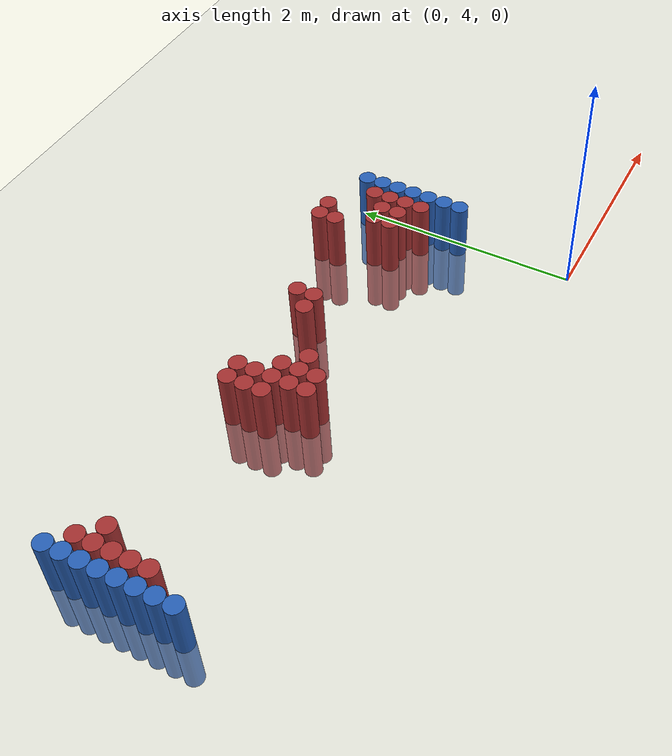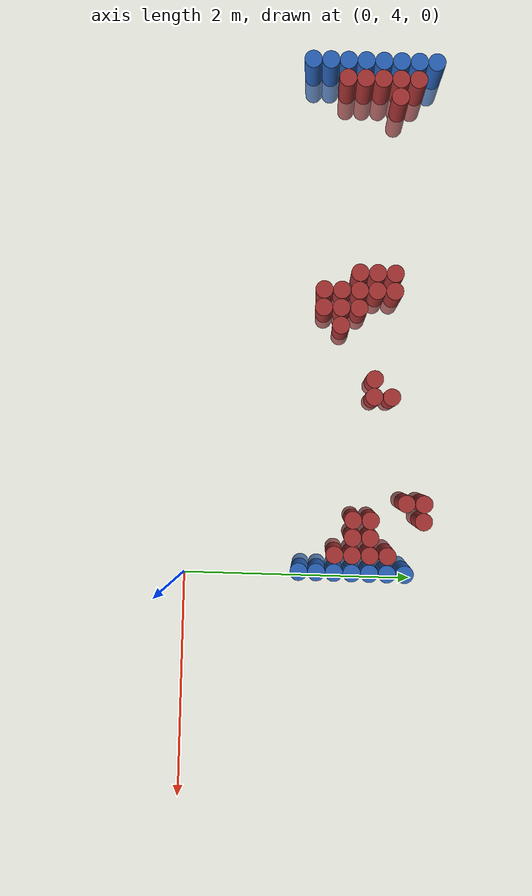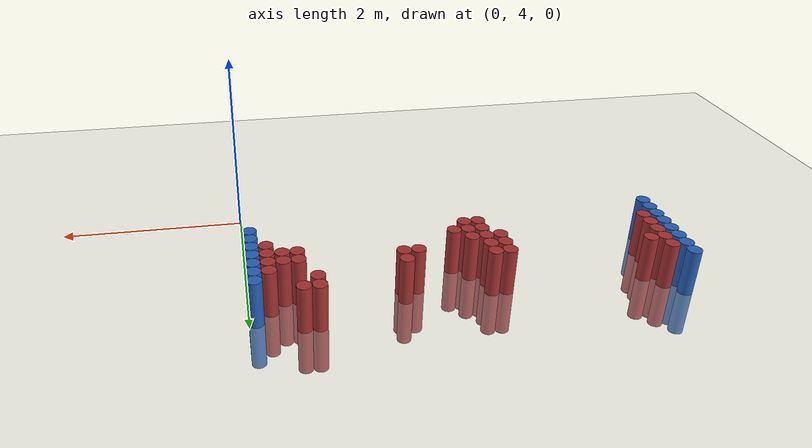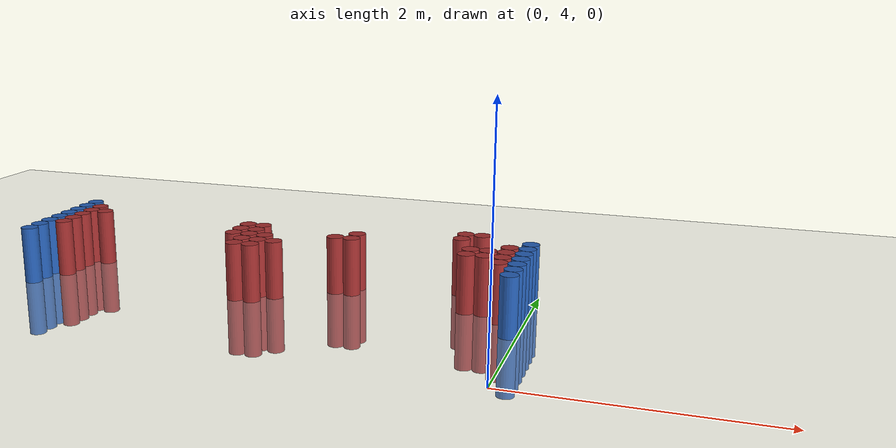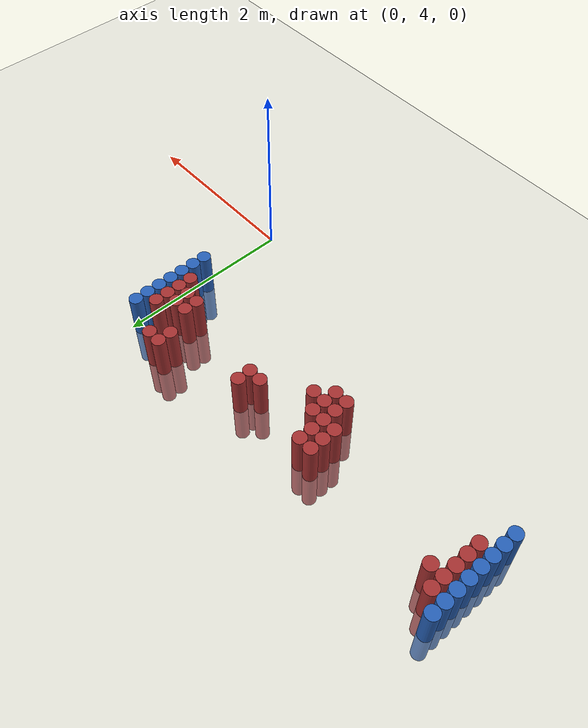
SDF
<sdf version="1.6">
 <world name="default">
  <model name="ground_plane">
   <static>1</static>
   <link name="link">
    <collision name="collision">
     <geometry><plane><normal>0 0 1</normal><size>100 100</size></plane></geometry>
     <surface><friction><ode><mu>100</mu><mu2>50</mu2></ode></friction></surface>
    </collision>
    <visual name="visual">
     <cast_shadows>0</cast_shadows>
     <geometry><plane><normal>0 0 1</normal><size>100 100</size></plane></geometry>
     <material>
      <script><uri>file://media/materials/scripts/gazebo.material</uri><name>Gazebo/Grey</name></script>
     </material>
    </visual>
   </link>
  </model>
  <model name="unit_cylinder_94">
   <static>1</static>
   <pose>-0.075000 5.025000 0.000000 0.000000 0.000000 0.000000</pose>
   <link name="link">
    <inertial>
     <mass>1</mass>
     <inertia><ixx>0.145833</ixx><ixy>0</ixy><ixz>0</ixz><iyy>0.145833</iyy><iyz>0</iyz><izz>0.125</izz></inertia>
    </inertial>
    <collision name="collision">
     <geometry><cylinder><radius>0.075000</radius><length>1</length></cylinder></geometry>
    </collision>
    <visual name="visual">
     <geometry><cylinder><radius>0.075000</radius><length>1</length></cylinder></geometry>
     <material>
      <ambient>0.152000 0.379000 0.720000 1</ambient>
      <diffuse>0.152000 0.379000 0.720000 1</diffuse>
     </material>
     <material>
      <script><name>Gazebo/Grey</name><uri>file://media/materials/scripts/gazebo.material</uri></script>
     </material>
    </visual>
   </link>
  </model>
  <model name="unit_cylinder_95">
   <static>1</static>
   <pose>-4.425000 5.025000 0.000000 0.000000 0.000000 0.000000</pose>
   <link name="link">
    <inertial>
     <mass>1</mass>
     <inertia><ixx>0.145833</ixx><ixy>0</ixy><ixz>0</ixz><iyy>0.145833</iyy><iyz>0</iyz><izz>0.125</izz></inertia>
    </inertial>
    <collision name="collision">
     <geometry><cylinder><radius>0.075000</radius><length>1</length></cylinder></geometry>
    </collision>
    <visual name="visual">
     <geometry><cylinder><radius>0.075000</radius><length>1</length></cylinder></geometry>
     <material>
      <ambient>0.152000 0.379000 0.720000 1</ambient>
      <diffuse>0.152000 0.379000 0.720000 1</diffuse>
     </material>
     <material>
      <script><name>Gazebo/Grey</name><uri>file://media/materials/scripts/gazebo.material</uri></script>
     </material>
    </visual>
   </link>
  </model>
  <model name="unit_cylinder_96">
   <static>1</static>
   <pose>-4.425000 5.175000 0.000000 0.000000 0.000000 0.000000</pose>
   <link name="link">
    <inertial>
     <mass>1</mass>
     <inertia><ixx>0.145833</ixx><ixy>0</ixy><ixz>0</ixz><iyy>0.145833</iyy><iyz>0</iyz><izz>0.125</izz></inertia>
    </inertial>
    <collision name="collision">
     <geometry><cylinder><radius>0.075000</radius><length>1</length></cylinder></geometry>
    </collision>
    <visual name="visual">
     <geometry><cylinder><radius>0.075000</radius><length>1</length></cylinder></geometry>
     <material>
      <ambient>0.152000 0.379000 0.720000 1</ambient>
      <diffuse>0.152000 0.379000 0.720000 1</diffuse>
     </material>
     <material>
      <script><name>Gazebo/Grey</name><uri>file://media/materials/scripts/gazebo.material</uri></script>
     </material>
    </visual>
   </link>
  </model>
  <model name="unit_cylinder_97">
   <static>1</static>
   <pose>-4.425000 5.325000 0.000000 0.000000 0.000000 0.000000</pose>
   <link name="link">
    <inertial>
     <mass>1</mass>
     <inertia><ixx>0.145833</ixx><ixy>0</ixy><ixz>0</ixz><iyy>0.145833</iyy><iyz>0</iyz><izz>0.125</izz></inertia>
    </inertial>
    <collision name="collision">
     <geometry><cylinder><radius>0.075000</radius><length>1</length></cylinder></geometry>
    </collision>
    <visual name="visual">
     <geometry><cylinder><radius>0.075000</radius><length>1</length></cylinder></geometry>
     <material>
      <ambient>0.152000 0.379000 0.720000 1</ambient>
      <diffuse>0.152000 0.379000 0.720000 1</diffuse>
     </material>
     <material>
      <script><name>Gazebo/Grey</name><uri>file://media/materials/scripts/gazebo.material</uri></script>
     </material>
    </visual>
   </link>
  </model>
  <model name="unit_cylinder_98">
   <static>1</static>
   <pose>-4.425000 5.475000 0.000000 0.000000 0.000000 0.000000</pose>
   <link name="link">
    <inertial>
     <mass>1</mass>
     <inertia><ixx>0.145833</ixx><ixy>0</ixy><ixz>0</ixz><iyy>0.145833</iyy><iyz>0</iyz><izz>0.125</izz></inertia>
    </inertial>
    <collision name="collision">
     <geometry><cylinder><radius>0.075000</radius><length>1</length></cylinder></geometry>
    </collision>
    <visual name="visual">
     <geometry><cylinder><radius>0.075000</radius><length>1</length></cylinder></geometry>
     <material>
      <ambient>0.152000 0.379000 0.720000 1</ambient>
      <diffuse>0.152000 0.379000 0.720000 1</diffuse>
     </material>
     <material>
      <script><name>Gazebo/Grey</name><uri>file://media/materials/scripts/gazebo.material</uri></script>
     </material>
    </visual>
   </link>
  </model>
  <model name="unit_cylinder_99">
   <static>1</static>
   <pose>-4.425000 5.625000 0.000000 0.000000 0.000000 0.000000</pose>
   <link name="link">
    <inertial>
     <mass>1</mass>
     <inertia><ixx>0.145833</ixx><ixy>0</ixy><ixz>0</ixz><iyy>0.145833</iyy><iyz>0</iyz><izz>0.125</izz></inertia>
    </inertial>
    <collision name="collision">
     <geometry><cylinder><radius>0.075000</radius><length>1</length></cylinder></geometry>
    </collision>
    <visual name="visual">
     <geometry><cylinder><radius>0.075000</radius><length>1</length></cylinder></geometry>
     <material>
      <ambient>0.152000 0.379000 0.720000 1</ambient>
      <diffuse>0.152000 0.379000 0.720000 1</diffuse>
     </material>
     <material>
      <script><name>Gazebo/Grey</name><uri>file://media/materials/scripts/gazebo.material</uri></script>
     </material>
    </visual>
   </link>
  </model>
  <model name="unit_cylinder_100">
   <static>1</static>
   <pose>-4.425000 5.775000 0.000000 0.000000 0.000000 0.000000</pose>
   <link name="link">
    <inertial>
     <mass>1</mass>
     <inertia><ixx>0.145833</ixx><ixy>0</ixy><ixz>0</ixz><iyy>0.145833</iyy><iyz>0</iyz><izz>0.125</izz></inertia>
    </inertial>
    <collision name="collision">
     <geometry><cylinder><radius>0.075000</radius><length>1</length></cylinder></geometry>
    </collision>
    <visual name="visual">
     <geometry><cylinder><radius>0.075000</radius><length>1</length></cylinder></geometry>
     <material>
      <ambient>0.152000 0.379000 0.720000 1</ambient>
      <diffuse>0.152000 0.379000 0.720000 1</diffuse>
     </material>
     <material>
      <script><name>Gazebo/Grey</name><uri>file://media/materials/scripts/gazebo.material</uri></script>
     </material>
    </visual>
   </link>
  </model>
  <model name="unit_cylinder_101">
   <static>1</static>
   <pose>-4.425000 5.925000 0.000000 0.000000 0.000000 0.000000</pose>
   <link name="link">
    <inertial>
     <mass>1</mass>
     <inertia><ixx>0.145833</ixx><ixy>0</ixy><ixz>0</ixz><iyy>0.145833</iyy><iyz>0</iyz><izz>0.125</izz></inertia>
    </inertial>
    <collision name="collision">
     <geometry><cylinder><radius>0.075000</radius><length>1</length></cylinder></geometry>
    </collision>
    <visual name="visual">
     <geometry><cylinder><radius>0.075000</radius><length>1</length></cylinder></geometry>
     <material>
      <ambient>0.152000 0.379000 0.720000 1</ambient>
      <diffuse>0.152000 0.379000 0.720000 1</diffuse>
     </material>
     <material>
      <script><name>Gazebo/Grey</name><uri>file://media/materials/scripts/gazebo.material</uri></script>
     </material>
    </visual>
   </link>
  </model>
  <model name="unit_cylinder_102">
   <static>1</static>
   <pose>-4.425000 6.075000 0.000000 0.000000 0.000000 0.000000</pose>
   <link name="link">
    <inertial>
     <mass>1</mass>
     <inertia><ixx>0.145833</ixx><ixy>0</ixy><ixz>0</ixz><iyy>0.145833</iyy><iyz>0</iyz><izz>0.125</izz></inertia>
    </inertial>
    <collision name="collision">
     <geometry><cylinder><radius>0.075000</radius><length>1</length></cylinder></geometry>
    </collision>
    <visual name="visual">
     <geometry><cylinder><radius>0.075000</radius><length>1</length></cylinder></geometry>
     <material>
      <ambient>0.152000 0.379000 0.720000 1</ambient>
      <diffuse>0.152000 0.379000 0.720000 1</diffuse>
     </material>
     <material>
      <script><name>Gazebo/Grey</name><uri>file://media/materials/scripts/gazebo.material</uri></script>
     </material>
    </visual>
   </link>
  </model>
  <model name="unit_cylinder_126">
   <static>1</static>
   <pose>-4.275000 5.325000 0.000000 0.000000 0.000000 0.000000</pose>
   <link name="link">
    <inertial>
     <mass>1</mass>
     <inertia><ixx>0.145833</ixx><ixy>0</ixy><ixz>0</ixz><iyy>0.145833</iyy><iyz>0</iyz><izz>0.125</izz></inertia>
    </inertial>
    <collision name="collision">
     <geometry><cylinder><radius>0.075000</radius><length>1</length></cylinder></geometry>
    </collision>
    <visual name="visual">
     <geometry><cylinder><radius>0.075000</radius><length>1</length></cylinder></geometry>
     <material>
      <ambient>0.648000 0.192000 0.192000 1</ambient>
      <diffuse>0.648000 0.192000 0.192000 1</diffuse>
     </material>
     <material>
      <script><name>Gazebo/Grey</name><uri>file://media/materials/scripts/gazebo.material</uri></script>
     </material>
    </visual>
   </link>
  </model>
  <model name="unit_cylinder_127">
   <static>1</static>
   <pose>-4.275000 5.475000 0.000000 0.000000 0.000000 0.000000</pose>
   <link name="link">
    <inertial>
     <mass>1</mass>
     <inertia><ixx>0.145833</ixx><ixy>0</ixy><ixz>0</ixz><iyy>0.145833</iyy><iyz>0</iyz><izz>0.125</izz></inertia>
    </inertial>
    <collision name="collision">
     <geometry><cylinder><radius>0.075000</radius><length>1</length></cylinder></geometry>
    </collision>
    <visual name="visual">
     <geometry><cylinder><radius>0.075000</radius><length>1</length></cylinder></geometry>
     <material>
      <ambient>0.648000 0.192000 0.192000 1</ambient>
      <diffuse>0.648000 0.192000 0.192000 1</diffuse>
     </material>
     <material>
      <script><name>Gazebo/Grey</name><uri>file://media/materials/scripts/gazebo.material</uri></script>
     </material>
    </visual>
   </link>
  </model>
  <model name="unit_cylinder_128">
   <static>1</static>
   <pose>-4.275000 5.625000 0.000000 0.000000 0.000000 0.000000</pose>
   <link name="link">
    <inertial>
     <mass>1</mass>
     <inertia><ixx>0.145833</ixx><ixy>0</ixy><ixz>0</ixz><iyy>0.145833</iyy><iyz>0</iyz><izz>0.125</izz></inertia>
    </inertial>
    <collision name="collision">
     <geometry><cylinder><radius>0.075000</radius><length>1</length></cylinder></geometry>
    </collision>
    <visual name="visual">
     <geometry><cylinder><radius>0.075000</radius><length>1</length></cylinder></geometry>
     <material>
      <ambient>0.648000 0.192000 0.192000 1</ambient>
      <diffuse>0.648000 0.192000 0.192000 1</diffuse>
     </material>
     <material>
      <script><name>Gazebo/Grey</name><uri>file://media/materials/scripts/gazebo.material</uri></script>
     </material>
    </visual>
   </link>
  </model>
  <model name="unit_cylinder_129">
   <static>1</static>
   <pose>-4.275000 5.775000 0.000000 0.000000 0.000000 0.000000</pose>
   <link name="link">
    <inertial>
     <mass>1</mass>
     <inertia><ixx>0.145833</ixx><ixy>0</ixy><ixz>0</ixz><iyy>0.145833</iyy><iyz>0</iyz><izz>0.125</izz></inertia>
    </inertial>
    <collision name="collision">
     <geometry><cylinder><radius>0.075000</radius><length>1</length></cylinder></geometry>
    </collision>
    <visual name="visual">
     <geometry><cylinder><radius>0.075000</radius><length>1</length></cylinder></geometry>
     <material>
      <ambient>0.648000 0.192000 0.192000 1</ambient>
      <diffuse>0.648000 0.192000 0.192000 1</diffuse>
     </material>
     <material>
      <script><name>Gazebo/Grey</name><uri>file://media/materials/scripts/gazebo.material</uri></script>
     </material>
    </visual>
   </link>
  </model>
  <model name="unit_cylinder_130">
   <static>1</static>
   <pose>-4.275000 5.925000 0.000000 0.000000 0.000000 0.000000</pose>
   <link name="link">
    <inertial>
     <mass>1</mass>
     <inertia><ixx>0.145833</ixx><ixy>0</ixy><ixz>0</ixz><iyy>0.145833</iyy><iyz>0</iyz><izz>0.125</izz></inertia>
    </inertial>
    <collision name="collision">
     <geometry><cylinder><radius>0.075000</radius><length>1</length></cylinder></geometry>
    </collision>
    <visual name="visual">
     <geometry><cylinder><radius>0.075000</radius><length>1</length></cylinder></geometry>
     <material>
      <ambient>0.648000 0.192000 0.192000 1</ambient>
      <diffuse>0.648000 0.192000 0.192000 1</diffuse>
     </material>
     <material>
      <script><name>Gazebo/Grey</name><uri>file://media/materials/scripts/gazebo.material</uri></script>
     </material>
    </visual>
   </link>
  </model>
  <model name="unit_cylinder_135">
   <static>1</static>
   <pose>-4.125000 5.775000 0.000000 0.000000 0.000000 0.000000</pose>
   <link name="link">
    <inertial>
     <mass>1</mass>
     <inertia><ixx>0.145833</ixx><ixy>0</ixy><ixz>0</ixz><iyy>0.145833</iyy><iyz>0</iyz><izz>0.125</izz></inertia>
    </inertial>
    <collision name="collision">
     <geometry><cylinder><radius>0.075000</radius><length>1</length></cylinder></geometry>
    </collision>
    <visual name="visual">
     <geometry><cylinder><radius>0.075000</radius><length>1</length></cylinder></geometry>
     <material>
      <ambient>0.648000 0.192000 0.192000 1</ambient>
      <diffuse>0.648000 0.192000 0.192000 1</diffuse>
     </material>
     <material>
      <script><name>Gazebo/Grey</name><uri>file://media/materials/scripts/gazebo.material</uri></script>
     </material>
    </visual>
   </link>
  </model>
  <model name="unit_cylinder_162">
   <static>1</static>
   <pose>-2.625000 5.475000 0.000000 0.000000 0.000000 0.000000</pose>
   <link name="link">
    <inertial>
     <mass>1</mass>
     <inertia><ixx>0.145833</ixx><ixy>0</ixy><ixz>0</ixz><iyy>0.145833</iyy><iyz>0</iyz><izz>0.125</izz></inertia>
    </inertial>
    <collision name="collision">
     <geometry><cylinder><radius>0.075000</radius><length>1</length></cylinder></geometry>
    </collision>
    <visual name="visual">
     <geometry><cylinder><radius>0.075000</radius><length>1</length></cylinder></geometry>
     <material>
      <ambient>0.648000 0.192000 0.192000 1</ambient>
      <diffuse>0.648000 0.192000 0.192000 1</diffuse>
     </material>
     <material>
      <script><name>Gazebo/Grey</name><uri>file://media/materials/scripts/gazebo.material</uri></script>
     </material>
    </visual>
   </link>
  </model>
  <model name="unit_cylinder_163">
   <static>1</static>
   <pose>-2.625000 5.625000 0.000000 0.000000 0.000000 0.000000</pose>
   <link name="link">
    <inertial>
     <mass>1</mass>
     <inertia><ixx>0.145833</ixx><ixy>0</ixy><ixz>0</ixz><iyy>0.145833</iyy><iyz>0</iyz><izz>0.125</izz></inertia>
    </inertial>
    <collision name="collision">
     <geometry><cylinder><radius>0.075000</radius><length>1</length></cylinder></geometry>
    </collision>
    <visual name="visual">
     <geometry><cylinder><radius>0.075000</radius><length>1</length></cylinder></geometry>
     <material>
      <ambient>0.648000 0.192000 0.192000 1</ambient>
      <diffuse>0.648000 0.192000 0.192000 1</diffuse>
     </material>
     <material>
      <script><name>Gazebo/Grey</name><uri>file://media/materials/scripts/gazebo.material</uri></script>
     </material>
    </visual>
   </link>
  </model>
  <model name="unit_cylinder_164">
   <static>1</static>
   <pose>-2.625000 5.775000 0.000000 0.000000 0.000000 0.000000</pose>
   <link name="link">
    <inertial>
     <mass>1</mass>
     <inertia><ixx>0.145833</ixx><ixy>0</ixy><ixz>0</ixz><iyy>0.145833</iyy><iyz>0</iyz><izz>0.125</izz></inertia>
    </inertial>
    <collision name="collision">
     <geometry><cylinder><radius>0.075000</radius><length>1</length></cylinder></geometry>
    </collision>
    <visual name="visual">
     <geometry><cylinder><radius>0.075000</radius><length>1</length></cylinder></geometry>
     <material>
      <ambient>0.648000 0.192000 0.192000 1</ambient>
      <diffuse>0.648000 0.192000 0.192000 1</diffuse>
     </material>
     <material>
      <script><name>Gazebo/Grey</name><uri>file://media/materials/scripts/gazebo.material</uri></script>
     </material>
    </visual>
   </link>
  </model>
  <model name="unit_cylinder_165">
   <static>1</static>
   <pose>-2.475000 5.175000 0.000000 0.000000 0.000000 0.000000</pose>
   <link name="link">
    <inertial>
     <mass>1</mass>
     <inertia><ixx>0.145833</ixx><ixy>0</ixy><ixz>0</ixz><iyy>0.145833</iyy><iyz>0</iyz><izz>0.125</izz></inertia>
    </inertial>
    <collision name="collision">
     <geometry><cylinder><radius>0.075000</radius><length>1</length></cylinder></geometry>
    </collision>
    <visual name="visual">
     <geometry><cylinder><radius>0.075000</radius><length>1</length></cylinder></geometry>
     <material>
      <ambient>0.648000 0.192000 0.192000 1</ambient>
      <diffuse>0.648000 0.192000 0.192000 1</diffuse>
     </material>
     <material>
      <script><name>Gazebo/Grey</name><uri>file://media/materials/scripts/gazebo.material</uri></script>
     </material>
    </visual>
   </link>
  </model>
  <model name="unit_cylinder_166">
   <static>1</static>
   <pose>-2.475000 5.325000 0.000000 0.000000 0.000000 0.000000</pose>
   <link name="link">
    <inertial>
     <mass>1</mass>
     <inertia><ixx>0.145833</ixx><ixy>0</ixy><ixz>0</ixz><iyy>0.145833</iyy><iyz>0</iyz><izz>0.125</izz></inertia>
    </inertial>
    <collision name="collision">
     <geometry><cylinder><radius>0.075000</radius><length>1</length></cylinder></geometry>
    </collision>
    <visual name="visual">
     <geometry><cylinder><radius>0.075000</radius><length>1</length></cylinder></geometry>
     <material>
      <ambient>0.648000 0.192000 0.192000 1</ambient>
      <diffuse>0.648000 0.192000 0.192000 1</diffuse>
     </material>
     <material>
      <script><name>Gazebo/Grey</name><uri>file://media/materials/scripts/gazebo.material</uri></script>
     </material>
    </visual>
   </link>
  </model>
  <model name="unit_cylinder_167">
   <static>1</static>
   <pose>-2.475000 5.475000 0.000000 0.000000 0.000000 0.000000</pose>
   <link name="link">
    <inertial>
     <mass>1</mass>
     <inertia><ixx>0.145833</ixx><ixy>0</ixy><ixz>0</ixz><iyy>0.145833</iyy><iyz>0</iyz><izz>0.125</izz></inertia>
    </inertial>
    <collision name="collision">
     <geometry><cylinder><radius>0.075000</radius><length>1</length></cylinder></geometry>
    </collision>
    <visual name="visual">
     <geometry><cylinder><radius>0.075000</radius><length>1</length></cylinder></geometry>
     <material>
      <ambient>0.648000 0.192000 0.192000 1</ambient>
      <diffuse>0.648000 0.192000 0.192000 1</diffuse>
     </material>
     <material>
      <script><name>Gazebo/Grey</name><uri>file://media/materials/scripts/gazebo.material</uri></script>
     </material>
    </visual>
   </link>
  </model>
  <model name="unit_cylinder_168">
   <static>1</static>
   <pose>-2.475000 5.625000 0.000000 0.000000 0.000000 0.000000</pose>
   <link name="link">
    <inertial>
     <mass>1</mass>
     <inertia><ixx>0.145833</ixx><ixy>0</ixy><ixz>0</ixz><iyy>0.145833</iyy><iyz>0</iyz><izz>0.125</izz></inertia>
    </inertial>
    <collision name="collision">
     <geometry><cylinder><radius>0.075000</radius><length>1</length></cylinder></geometry>
    </collision>
    <visual name="visual">
     <geometry><cylinder><radius>0.075000</radius><length>1</length></cylinder></geometry>
     <material>
      <ambient>0.648000 0.192000 0.192000 1</ambient>
      <diffuse>0.648000 0.192000 0.192000 1</diffuse>
     </material>
     <material>
      <script><name>Gazebo/Grey</name><uri>file://media/materials/scripts/gazebo.material</uri></script>
     </material>
    </visual>
   </link>
  </model>
  <model name="unit_cylinder_169">
   <static>1</static>
   <pose>-2.475000 5.775000 0.000000 0.000000 0.000000 0.000000</pose>
   <link name="link">
    <inertial>
     <mass>1</mass>
     <inertia><ixx>0.145833</ixx><ixy>0</ixy><ixz>0</ixz><iyy>0.145833</iyy><iyz>0</iyz><izz>0.125</izz></inertia>
    </inertial>
    <collision name="collision">
     <geometry><cylinder><radius>0.075000</radius><length>1</length></cylinder></geometry>
    </collision>
    <visual name="visual">
     <geometry><cylinder><radius>0.075000</radius><length>1</length></cylinder></geometry>
     <material>
      <ambient>0.648000 0.192000 0.192000 1</ambient>
      <diffuse>0.648000 0.192000 0.192000 1</diffuse>
     </material>
     <material>
      <script><name>Gazebo/Grey</name><uri>file://media/materials/scripts/gazebo.material</uri></script>
     </material>
    </visual>
   </link>
  </model>
  <model name="unit_cylinder_172">
   <static>1</static>
   <pose>-2.325000 5.175000 0.000000 0.000000 0.000000 0.000000</pose>
   <link name="link">
    <inertial>
     <mass>1</mass>
     <inertia><ixx>0.145833</ixx><ixy>0</ixy><ixz>0</ixz><iyy>0.145833</iyy><iyz>0</iyz><izz>0.125</izz></inertia>
    </inertial>
    <collision name="collision">
     <geometry><cylinder><radius>0.075000</radius><length>1</length></cylinder></geometry>
    </collision>
    <visual name="visual">
     <geometry><cylinder><radius>0.075000</radius><length>1</length></cylinder></geometry>
     <material>
      <ambient>0.648000 0.192000 0.192000 1</ambient>
      <diffuse>0.648000 0.192000 0.192000 1</diffuse>
     </material>
     <material>
      <script><name>Gazebo/Grey</name><uri>file://media/materials/scripts/gazebo.material</uri></script>
     </material>
    </visual>
   </link>
  </model>
  <model name="unit_cylinder_173">
   <static>1</static>
   <pose>-2.325000 5.325000 0.000000 0.000000 0.000000 0.000000</pose>
   <link name="link">
    <inertial>
     <mass>1</mass>
     <inertia><ixx>0.145833</ixx><ixy>0</ixy><ixz>0</ixz><iyy>0.145833</iyy><iyz>0</iyz><izz>0.125</izz></inertia>
    </inertial>
    <collision name="collision">
     <geometry><cylinder><radius>0.075000</radius><length>1</length></cylinder></geometry>
    </collision>
    <visual name="visual">
     <geometry><cylinder><radius>0.075000</radius><length>1</length></cylinder></geometry>
     <material>
      <ambient>0.648000 0.192000 0.192000 1</ambient>
      <diffuse>0.648000 0.192000 0.192000 1</diffuse>
     </material>
     <material>
      <script><name>Gazebo/Grey</name><uri>file://media/materials/scripts/gazebo.material</uri></script>
     </material>
    </visual>
   </link>
  </model>
  <model name="unit_cylinder_174">
   <static>1</static>
   <pose>-2.325000 5.475000 0.000000 0.000000 0.000000 0.000000</pose>
   <link name="link">
    <inertial>
     <mass>1</mass>
     <inertia><ixx>0.145833</ixx><ixy>0</ixy><ixz>0</ixz><iyy>0.145833</iyy><iyz>0</iyz><izz>0.125</izz></inertia>
    </inertial>
    <collision name="collision">
     <geometry><cylinder><radius>0.075000</radius><length>1</length></cylinder></geometry>
    </collision>
    <visual name="visual">
     <geometry><cylinder><radius>0.075000</radius><length>1</length></cylinder></geometry>
     <material>
      <ambient>0.648000 0.192000 0.192000 1</ambient>
      <diffuse>0.648000 0.192000 0.192000 1</diffuse>
     </material>
     <material>
      <script><name>Gazebo/Grey</name><uri>file://media/materials/scripts/gazebo.material</uri></script>
     </material>
    </visual>
   </link>
  </model>
  <model name="unit_cylinder_178">
   <static>1</static>
   <pose>-2.175000 5.325000 0.000000 0.000000 0.000000 0.000000</pose>
   <link name="link">
    <inertial>
     <mass>1</mass>
     <inertia><ixx>0.145833</ixx><ixy>0</ixy><ixz>0</ixz><iyy>0.145833</iyy><iyz>0</iyz><izz>0.125</izz></inertia>
    </inertial>
    <collision name="collision">
     <geometry><cylinder><radius>0.075000</radius><length>1</length></cylinder></geometry>
    </collision>
    <visual name="visual">
     <geometry><cylinder><radius>0.075000</radius><length>1</length></cylinder></geometry>
     <material>
      <ambient>0.648000 0.192000 0.192000 1</ambient>
      <diffuse>0.648000 0.192000 0.192000 1</diffuse>
     </material>
     <material>
      <script><name>Gazebo/Grey</name><uri>file://media/materials/scripts/gazebo.material</uri></script>
     </material>
    </visual>
   </link>
  </model>
  <model name="unit_cylinder_180">
   <static>1</static>
   <pose>-1.725000 5.625000 0.000000 0.000000 0.000000 0.000000</pose>
   <link name="link">
    <inertial>
     <mass>1</mass>
     <inertia><ixx>0.145833</ixx><ixy>0</ixy><ixz>0</ixz><iyy>0.145833</iyy><iyz>0</iyz><izz>0.125</izz></inertia>
    </inertial>
    <collision name="collision">
     <geometry><cylinder><radius>0.075000</radius><length>1</length></cylinder></geometry>
    </collision>
    <visual name="visual">
     <geometry><cylinder><radius>0.075000</radius><length>1</length></cylinder></geometry>
     <material>
      <ambient>0.648000 0.192000 0.192000 1</ambient>
      <diffuse>0.648000 0.192000 0.192000 1</diffuse>
     </material>
     <material>
      <script><name>Gazebo/Grey</name><uri>file://media/materials/scripts/gazebo.material</uri></script>
     </material>
    </visual>
   </link>
  </model>
  <model name="unit_cylinder_182">
   <static>1</static>
   <pose>-1.575000 5.625000 0.000000 0.000000 0.000000 0.000000</pose>
   <link name="link">
    <inertial>
     <mass>1</mass>
     <inertia><ixx>0.145833</ixx><ixy>0</ixy><ixz>0</ixz><iyy>0.145833</iyy><iyz>0</iyz><izz>0.125</izz></inertia>
    </inertial>
    <collision name="collision">
     <geometry><cylinder><radius>0.075000</radius><length>1</length></cylinder></geometry>
    </collision>
    <visual name="visual">
     <geometry><cylinder><radius>0.075000</radius><length>1</length></cylinder></geometry>
     <material>
      <ambient>0.648000 0.192000 0.192000 1</ambient>
      <diffuse>0.648000 0.192000 0.192000 1</diffuse>
     </material>
     <material>
      <script><name>Gazebo/Grey</name><uri>file://media/materials/scripts/gazebo.material</uri></script>
     </material>
    </visual>
   </link>
  </model>
  <model name="unit_cylinder_183">
   <static>1</static>
   <pose>-1.575000 5.775000 0.000000 0.000000 0.000000 0.000000</pose>
   <link name="link">
    <inertial>
     <mass>1</mass>
     <inertia><ixx>0.145833</ixx><ixy>0</ixy><ixz>0</ixz><iyy>0.145833</iyy><iyz>0</iyz><izz>0.125</izz></inertia>
    </inertial>
    <collision name="collision">
     <geometry><cylinder><radius>0.075000</radius><length>1</length></cylinder></geometry>
    </collision>
    <visual name="visual">
     <geometry><cylinder><radius>0.075000</radius><length>1</length></cylinder></geometry>
     <material>
      <ambient>0.648000 0.192000 0.192000 1</ambient>
      <diffuse>0.648000 0.192000 0.192000 1</diffuse>
     </material>
     <material>
      <script><name>Gazebo/Grey</name><uri>file://media/materials/scripts/gazebo.material</uri></script>
     </material>
    </visual>
   </link>
  </model>
  <model name="unit_cylinder_189">
   <static>1</static>
   <pose>-0.675000 5.925000 0.000000 0.000000 0.000000 0.000000</pose>
   <link name="link">
    <inertial>
     <mass>1</mass>
     <inertia><ixx>0.145833</ixx><ixy>0</ixy><ixz>0</ixz><iyy>0.145833</iyy><iyz>0</iyz><izz>0.125</izz></inertia>
    </inertial>
    <collision name="collision">
     <geometry><cylinder><radius>0.075000</radius><length>1</length></cylinder></geometry>
    </collision>
    <visual name="visual">
     <geometry><cylinder><radius>0.075000</radius><length>1</length></cylinder></geometry>
     <material>
      <ambient>0.648000 0.192000 0.192000 1</ambient>
      <diffuse>0.648000 0.192000 0.192000 1</diffuse>
     </material>
     <material>
      <script><name>Gazebo/Grey</name><uri>file://media/materials/scripts/gazebo.material</uri></script>
     </material>
    </visual>
   </link>
  </model>
  <model name="unit_cylinder_190">
   <static>1</static>
   <pose>-0.675000 6.075000 0.000000 0.000000 0.000000 0.000000</pose>
   <link name="link">
    <inertial>
     <mass>1</mass>
     <inertia><ixx>0.145833</ixx><ixy>0</ixy><ixz>0</ixz><iyy>0.145833</iyy><iyz>0</iyz><izz>0.125</izz></inertia>
    </inertial>
    <collision name="collision">
     <geometry><cylinder><radius>0.075000</radius><length>1</length></cylinder></geometry>
    </collision>
    <visual name="visual">
     <geometry><cylinder><radius>0.075000</radius><length>1</length></cylinder></geometry>
     <material>
      <ambient>0.648000 0.192000 0.192000 1</ambient>
      <diffuse>0.648000 0.192000 0.192000 1</diffuse>
     </material>
     <material>
      <script><name>Gazebo/Grey</name><uri>file://media/materials/scripts/gazebo.material</uri></script>
     </material>
    </visual>
   </link>
  </model>
  <model name="unit_cylinder_191">
   <static>1</static>
   <pose>-0.525000 5.475000 0.000000 0.000000 0.000000 0.000000</pose>
   <link name="link">
    <inertial>
     <mass>1</mass>
     <inertia><ixx>0.145833</ixx><ixy>0</ixy><ixz>0</ixz><iyy>0.145833</iyy><iyz>0</iyz><izz>0.125</izz></inertia>
    </inertial>
    <collision name="collision">
     <geometry><cylinder><radius>0.075000</radius><length>1</length></cylinder></geometry>
    </collision>
    <visual name="visual">
     <geometry><cylinder><radius>0.075000</radius><length>1</length></cylinder></geometry>
     <material>
      <ambient>0.648000 0.192000 0.192000 1</ambient>
      <diffuse>0.648000 0.192000 0.192000 1</diffuse>
     </material>
     <material>
      <script><name>Gazebo/Grey</name><uri>file://media/materials/scripts/gazebo.material</uri></script>
     </material>
    </visual>
   </link>
  </model>
  <model name="unit_cylinder_192">
   <static>1</static>
   <pose>-0.525000 5.625000 0.000000 0.000000 0.000000 0.000000</pose>
   <link name="link">
    <inertial>
     <mass>1</mass>
     <inertia><ixx>0.145833</ixx><ixy>0</ixy><ixz>0</ixz><iyy>0.145833</iyy><iyz>0</iyz><izz>0.125</izz></inertia>
    </inertial>
    <collision name="collision">
     <geometry><cylinder><radius>0.075000</radius><length>1</length></cylinder></geometry>
    </collision>
    <visual name="visual">
     <geometry><cylinder><radius>0.075000</radius><length>1</length></cylinder></geometry>
     <material>
      <ambient>0.648000 0.192000 0.192000 1</ambient>
      <diffuse>0.648000 0.192000 0.192000 1</diffuse>
     </material>
     <material>
      <script><name>Gazebo/Grey</name><uri>file://media/materials/scripts/gazebo.material</uri></script>
     </material>
    </visual>
   </link>
  </model>
  <model name="unit_cylinder_193">
   <static>1</static>
   <pose>-0.525000 6.075000 0.000000 0.000000 0.000000 0.000000</pose>
   <link name="link">
    <inertial>
     <mass>1</mass>
     <inertia><ixx>0.145833</ixx><ixy>0</ixy><ixz>0</ixz><iyy>0.145833</iyy><iyz>0</iyz><izz>0.125</izz></inertia>
    </inertial>
    <collision name="collision">
     <geometry><cylinder><radius>0.075000</radius><length>1</length></cylinder></geometry>
    </collision>
    <visual name="visual">
     <geometry><cylinder><radius>0.075000</radius><length>1</length></cylinder></geometry>
     <material>
      <ambient>0.648000 0.192000 0.192000 1</ambient>
      <diffuse>0.648000 0.192000 0.192000 1</diffuse>
     </material>
     <material>
      <script><name>Gazebo/Grey</name><uri>file://media/materials/scripts/gazebo.material</uri></script>
     </material>
    </visual>
   </link>
  </model>
  <model name="unit_cylinder_194">
   <static>1</static>
   <pose>-0.375000 5.475000 0.000000 0.000000 0.000000 0.000000</pose>
   <link name="link">
    <inertial>
     <mass>1</mass>
     <inertia><ixx>0.145833</ixx><ixy>0</ixy><ixz>0</ixz><iyy>0.145833</iyy><iyz>0</iyz><izz>0.125</izz></inertia>
    </inertial>
    <collision name="collision">
     <geometry><cylinder><radius>0.075000</radius><length>1</length></cylinder></geometry>
    </collision>
    <visual name="visual">
     <geometry><cylinder><radius>0.075000</radius><length>1</length></cylinder></geometry>
     <material>
      <ambient>0.648000 0.192000 0.192000 1</ambient>
      <diffuse>0.648000 0.192000 0.192000 1</diffuse>
     </material>
     <material>
      <script><name>Gazebo/Grey</name><uri>file://media/materials/scripts/gazebo.material</uri></script>
     </material>
    </visual>
   </link>
  </model>
  <model name="unit_cylinder_195">
   <static>1</static>
   <pose>-0.375000 5.625000 0.000000 0.000000 0.000000 0.000000</pose>
   <link name="link">
    <inertial>
     <mass>1</mass>
     <inertia><ixx>0.145833</ixx><ixy>0</ixy><ixz>0</ixz><iyy>0.145833</iyy><iyz>0</iyz><izz>0.125</izz></inertia>
    </inertial>
    <collision name="collision">
     <geometry><cylinder><radius>0.075000</radius><length>1</length></cylinder></geometry>
    </collision>
    <visual name="visual">
     <geometry><cylinder><radius>0.075000</radius><length>1</length></cylinder></geometry>
     <material>
      <ambient>0.648000 0.192000 0.192000 1</ambient>
      <diffuse>0.648000 0.192000 0.192000 1</diffuse>
     </material>
     <material>
      <script><name>Gazebo/Grey</name><uri>file://media/materials/scripts/gazebo.material</uri></script>
     </material>
    </visual>
   </link>
  </model>
  <model name="unit_cylinder_196">
   <static>1</static>
   <pose>-0.225000 5.325000 0.000000 0.000000 0.000000 0.000000</pose>
   <link name="link">
    <inertial>
     <mass>1</mass>
     <inertia><ixx>0.145833</ixx><ixy>0</ixy><ixz>0</ixz><iyy>0.145833</iyy><iyz>0</iyz><izz>0.125</izz></inertia>
    </inertial>
    <collision name="collision">
     <geometry><cylinder><radius>0.075000</radius><length>1</length></cylinder></geometry>
    </collision>
    <visual name="visual">
     <geometry><cylinder><radius>0.075000</radius><length>1</length></cylinder></geometry>
     <material>
      <ambient>0.648000 0.192000 0.192000 1</ambient>
      <diffuse>0.648000 0.192000 0.192000 1</diffuse>
     </material>
     <material>
      <script><name>Gazebo/Grey</name><uri>file://media/materials/scripts/gazebo.material</uri></script>
     </material>
    </visual>
   </link>
  </model>
  <model name="unit_cylinder_197">
   <static>1</static>
   <pose>-0.225000 5.475000 0.000000 0.000000 0.000000 0.000000</pose>
   <link name="link">
    <inertial>
     <mass>1</mass>
     <inertia><ixx>0.145833</ixx><ixy>0</ixy><ixz>0</ixz><iyy>0.145833</iyy><iyz>0</iyz><izz>0.125</izz></inertia>
    </inertial>
    <collision name="collision">
     <geometry><cylinder><radius>0.075000</radius><length>1</length></cylinder></geometry>
    </collision>
    <visual name="visual">
     <geometry><cylinder><radius>0.075000</radius><length>1</length></cylinder></geometry>
     <material>
      <ambient>0.648000 0.192000 0.192000 1</ambient>
      <diffuse>0.648000 0.192000 0.192000 1</diffuse>
     </material>
     <material>
      <script><name>Gazebo/Grey</name><uri>file://media/materials/scripts/gazebo.material</uri></script>
     </material>
    </visual>
   </link>
  </model>
  <model name="unit_cylinder_198">
   <static>1</static>
   <pose>-0.225000 5.625000 0.000000 0.000000 0.000000 0.000000</pose>
   <link name="link">
    <inertial>
     <mass>1</mass>
     <inertia><ixx>0.145833</ixx><ixy>0</ixy><ixz>0</ixz><iyy>0.145833</iyy><iyz>0</iyz><izz>0.125</izz></inertia>
    </inertial>
    <collision name="collision">
     <geometry><cylinder><radius>0.075000</radius><length>1</length></cylinder></geometry>
    </collision>
    <visual name="visual">
     <geometry><cylinder><radius>0.075000</radius><length>1</length></cylinder></geometry>
     <material>
      <ambient>0.648000 0.192000 0.192000 1</ambient>
      <diffuse>0.648000 0.192000 0.192000 1</diffuse>
     </material>
     <material>
      <script><name>Gazebo/Grey</name><uri>file://media/materials/scripts/gazebo.material</uri></script>
     </material>
    </visual>
   </link>
  </model>
  <model name="unit_cylinder_199">
   <static>1</static>
   <pose>-0.225000 5.775000 0.000000 0.000000 0.000000 0.000000</pose>
   <link name="link">
    <inertial>
     <mass>1</mass>
     <inertia><ixx>0.145833</ixx><ixy>0</ixy><ixz>0</ixz><iyy>0.145833</iyy><iyz>0</iyz><izz>0.125</izz></inertia>
    </inertial>
    <collision name="collision">
     <geometry><cylinder><radius>0.075000</radius><length>1</length></cylinder></geometry>
    </collision>
    <visual name="visual">
     <geometry><cylinder><radius>0.075000</radius><length>1</length></cylinder></geometry>
     <material>
      <ambient>0.648000 0.192000 0.192000 1</ambient>
      <diffuse>0.648000 0.192000 0.192000 1</diffuse>
     </material>
     <material>
      <script><name>Gazebo/Grey</name><uri>file://media/materials/scripts/gazebo.material</uri></script>
     </material>
    </visual>
   </link>
  </model>
  <model name="unit_cylinder_206">
   <static>1</static>
   <pose>-0.075000 5.175000 0.000000 0.000000 0.000000 0.000000</pose>
   <link name="link">
    <inertial>
     <mass>1</mass>
     <inertia><ixx>0.145833</ixx><ixy>0</ixy><ixz>0</ixz><iyy>0.145833</iyy><iyz>0</iyz><izz>0.125</izz></inertia>
    </inertial>
    <collision name="collision">
     <geometry><cylinder><radius>0.075000</radius><length>1</length></cylinder></geometry>
    </collision>
    <visual name="visual">
     <geometry><cylinder><radius>0.075000</radius><length>1</length></cylinder></geometry>
     <material>
      <ambient>0.152000 0.379000 0.720000 1</ambient>
      <diffuse>0.152000 0.379000 0.720000 1</diffuse>
     </material>
     <material>
      <script><name>Gazebo/Grey</name><uri>file://media/materials/scripts/gazebo.material</uri></script>
     </material>
    </visual>
   </link>
  </model>
  <model name="unit_cylinder_207">
   <static>1</static>
   <pose>-0.075000 5.325000 0.000000 0.000000 0.000000 0.000000</pose>
   <link name="link">
    <inertial>
     <mass>1</mass>
     <inertia><ixx>0.145833</ixx><ixy>0</ixy><ixz>0</ixz><iyy>0.145833</iyy><iyz>0</iyz><izz>0.125</izz></inertia>
    </inertial>
    <collision name="collision">
     <geometry><cylinder><radius>0.075000</radius><length>1</length></cylinder></geometry>
    </collision>
    <visual name="visual">
     <geometry><cylinder><radius>0.075000</radius><length>1</length></cylinder></geometry>
     <material>
      <ambient>0.152000 0.379000 0.720000 1</ambient>
      <diffuse>0.152000 0.379000 0.720000 1</diffuse>
     </material>
     <material>
      <script><name>Gazebo/Grey</name><uri>file://media/materials/scripts/gazebo.material</uri></script>
     </material>
    </visual>
   </link>
  </model>
  <model name="unit_cylinder_208">
   <static>1</static>
   <pose>-0.075000 5.475000 0.000000 0.000000 0.000000 0.000000</pose>
   <link name="link">
    <inertial>
     <mass>1</mass>
     <inertia><ixx>0.145833</ixx><ixy>0</ixy><ixz>0</ixz><iyy>0.145833</iyy><iyz>0</iyz><izz>0.125</izz></inertia>
    </inertial>
    <collision name="collision">
     <geometry><cylinder><radius>0.075000</radius><length>1</length></cylinder></geometry>
    </collision>
    <visual name="visual">
     <geometry><cylinder><radius>0.075000</radius><length>1</length></cylinder></geometry>
     <material>
      <ambient>0.152000 0.379000 0.720000 1</ambient>
      <diffuse>0.152000 0.379000 0.720000 1</diffuse>
     </material>
     <material>
      <script><name>Gazebo/Grey</name><uri>file://media/materials/scripts/gazebo.material</uri></script>
     </material>
    </visual>
   </link>
  </model>
  <model name="unit_cylinder_209">
   <static>1</static>
   <pose>-0.075000 5.625000 0.000000 0.000000 0.000000 0.000000</pose>
   <link name="link">
    <inertial>
     <mass>1</mass>
     <inertia><ixx>0.145833</ixx><ixy>0</ixy><ixz>0</ixz><iyy>0.145833</iyy><iyz>0</iyz><izz>0.125</izz></inertia>
    </inertial>
    <collision name="collision">
     <geometry><cylinder><radius>0.075000</radius><length>1</length></cylinder></geometry>
    </collision>
    <visual name="visual">
     <geometry><cylinder><radius>0.075000</radius><length>1</length></cylinder></geometry>
     <material>
      <ambient>0.152000 0.379000 0.720000 1</ambient>
      <diffuse>0.152000 0.379000 0.720000 1</diffuse>
     </material>
     <material>
      <script><name>Gazebo/Grey</name><uri>file://media/materials/scripts/gazebo.material</uri></script>
     </material>
    </visual>
   </link>
  </model>
  <model name="unit_cylinder_210">
   <static>1</static>
   <pose>-0.075000 5.775000 0.000000 0.000000 0.000000 0.000000</pose>
   <link name="link">
    <inertial>
     <mass>1</mass>
     <inertia><ixx>0.145833</ixx><ixy>0</ixy><ixz>0</ixz><iyy>0.145833</iyy><iyz>0</iyz><izz>0.125</izz></inertia>
    </inertial>
    <collision name="collision">
     <geometry><cylinder><radius>0.075000</radius><length>1</length></cylinder></geometry>
    </collision>
    <visual name="visual">
     <geometry><cylinder><radius>0.075000</radius><length>1</length></cylinder></geometry>
     <material>
      <ambient>0.152000 0.379000 0.720000 1</ambient>
      <diffuse>0.152000 0.379000 0.720000 1</diffuse>
     </material>
     <material>
      <script><name>Gazebo/Grey</name><uri>file://media/materials/scripts/gazebo.material</uri></script>
     </material>
    </visual>
   </link>
  </model>
  <model name="unit_cylinder_211">
   <static>1</static>
   <pose>-0.075000 5.925000 0.000000 0.000000 0.000000 0.000000</pose>
   <link name="link">
    <inertial>
     <mass>1</mass>
     <inertia><ixx>0.145833</ixx><ixy>0</ixy><ixz>0</ixz><iyy>0.145833</iyy><iyz>0</iyz><izz>0.125</izz></inertia>
    </inertial>
    <collision name="collision">
     <geometry><cylinder><radius>0.075000</radius><length>1</length></cylinder></geometry>
    </collision>
    <visual name="visual">
     <geometry><cylinder><radius>0.075000</radius><length>1</length></cylinder></geometry>
     <material>
      <ambient>0.152000 0.379000 0.720000 1</ambient>
      <diffuse>0.152000 0.379000 0.720000 1</diffuse>
     </material>
     <material>
      <script><name>Gazebo/Grey</name><uri>file://media/materials/scripts/gazebo.material</uri></script>
     </material>
    </visual>
   </link>
  </model>
 </world>
</sdf>
